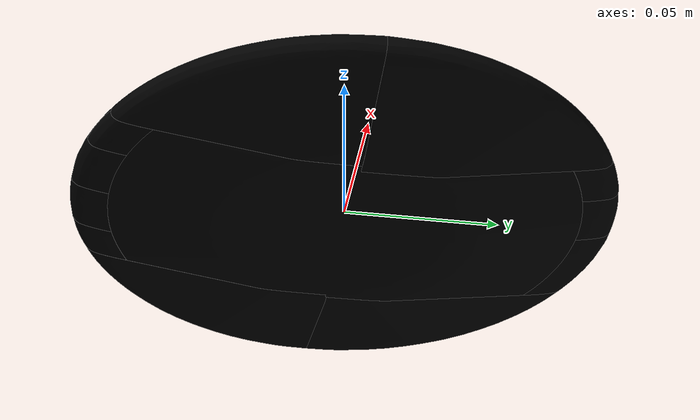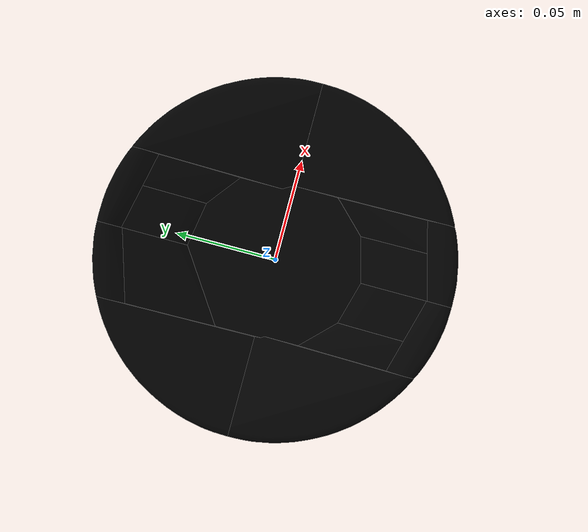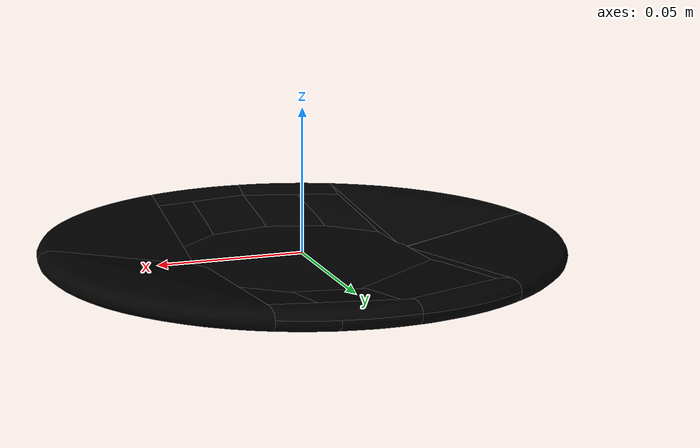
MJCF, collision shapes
<mujoco model="plate_31">
  <asset>
    <mesh file="visual/model_normalized_0.obj" name="model_normalized_0_vis" scale="0.175 0.175 0.175" refquat="1.0 0.0 0.0 0.0" />
    <texture type="2d" name="image0" file="visual/image0.png" />
    <material name="phong2.002" texture="image0" specular="0.5" shininess="1.0" />
    <mesh file="collision/model_collision_0.obj" name="model_collision_0" scale="0.175 0.175 0.175" refquat="1.0 0.0 0.0 0.0" />
    <mesh file="collision/model_collision_1.obj" name="model_collision_1" scale="0.175 0.175 0.175" refquat="1.0 0.0 0.0 0.0" />
    <mesh file="collision/model_collision_2.obj" name="model_collision_2" scale="0.175 0.175 0.175" refquat="1.0 0.0 0.0 0.0" />
    <mesh file="collision/model_collision_3.obj" name="model_collision_3" scale="0.175 0.175 0.175" refquat="1.0 0.0 0.0 0.0" />
    <mesh file="collision/model_collision_4.obj" name="model_collision_4" scale="0.175 0.175 0.175" refquat="1.0 0.0 0.0 0.0" />
    <mesh file="collision/model_collision_5.obj" name="model_collision_5" scale="0.175 0.175 0.175" refquat="1.0 0.0 0.0 0.0" />
    <mesh file="collision/model_collision_6.obj" name="model_collision_6" scale="0.175 0.175 0.175" refquat="1.0 0.0 0.0 0.0" />
    <mesh file="collision/model_collision_7.obj" name="model_collision_7" scale="0.175 0.175 0.175" refquat="1.0 0.0 0.0 0.0" />
    <mesh file="collision/model_collision_8.obj" name="model_collision_8" scale="0.175 0.175 0.175" refquat="1.0 0.0 0.0 0.0" />
    <mesh file="collision/model_collision_9.obj" name="model_collision_9" scale="0.175 0.175 0.175" refquat="1.0 0.0 0.0 0.0" />
    <mesh file="collision/model_collision_10.obj" name="model_collision_10" scale="0.175 0.175 0.175" refquat="1.0 0.0 0.0 0.0" />
    <mesh file="collision/model_collision_11.obj" name="model_collision_11" scale="0.175 0.175 0.175" refquat="1.0 0.0 0.0 0.0" />
    <mesh file="collision/model_collision_12.obj" name="model_collision_12" scale="0.175 0.175 0.175" refquat="1.0 0.0 0.0 0.0" />
    <mesh file="collision/model_collision_13.obj" name="model_collision_13" scale="0.175 0.175 0.175" refquat="1.0 0.0 0.0 0.0" />
    <mesh file="collision/model_collision_14.obj" name="model_collision_14" scale="0.175 0.175 0.175" refquat="1.0 0.0 0.0 0.0" />
    <mesh file="collision/model_collision_15.obj" name="model_collision_15" scale="0.175 0.175 0.175" refquat="1.0 0.0 0.0 0.0" />
  </asset>
  <default>
    <default class="region">
      <geom group="1" conaffinity="0" contype="0" rgba="0 1 0 0" />
    </default>
  </default>
  <worldbody>
    <body>
      <body name="object">
        <geom density="0" type="mesh" mesh="model_normalized_0_vis" conaffinity="0" contype="0" group="2" material="phong2.002" mass="0.18" />
        <geom class="region" name="reg_bbox" type="box" pos="2.624999998618316e-09 -1.749999999078877e-09 -4.39949999999972e-06" size="0.08564819725 0.08564822525 0.00693133875" />
        <geom density="0" friction="1.2 0.1 0.001" type="mesh" group="3" rgba="0 0 0 0" mesh="model_collision_0"  condim="4"/>        <geom density="0" friction="1.2 0.1 0.001" type="mesh" group="3" rgba="0 0 0 0" mesh="model_collision_1"  condim="4"/>        <geom density="0" friction="1.2 0.1 0.001" type="mesh" group="3" rgba="0 0 0 0" mesh="model_collision_2"  condim="4"/>        <geom density="0" friction="1.2 0.1 0.001" type="mesh" group="3" rgba="0 0 0 0" mesh="model_collision_3"  condim="4"/>        <geom density="0" friction="1.2 0.1 0.001" type="mesh" group="3" rgba="0 0 0 0" mesh="model_collision_4"  condim="4"/>        <geom density="0" friction="1.2 0.1 0.001" type="mesh" group="3" rgba="0 0 0 0" mesh="model_collision_5"  condim="4"/>        <geom density="0" friction="1.2 0.1 0.001" type="mesh" group="3" rgba="0 0 0 0" mesh="model_collision_6"  condim="4"/>        <geom density="0" friction="1.2 0.1 0.001" type="mesh" group="3" rgba="0 0 0 0" mesh="model_collision_7"  condim="4"/>        <geom density="0" friction="1.2 0.1 0.001" type="mesh" group="3" rgba="0 0 0 0" mesh="model_collision_8"  condim="4"/>        <geom density="0" friction="1.2 0.1 0.001" type="mesh" group="3" rgba="0 0 0 0" mesh="model_collision_9"  condim="4"/>        <geom density="0" friction="1.2 0.1 0.001" type="mesh" group="3" rgba="0 0 0 0" mesh="model_collision_10"  condim="4"/>        <geom density="0" friction="1.2 0.1 0.001" type="mesh" group="3" rgba="0 0 0 0" mesh="model_collision_11"  condim="4"/>        <geom density="0" friction="1.2 0.1 0.001" type="mesh" group="3" rgba="0 0 0 0" mesh="model_collision_12"  condim="4"/>        <geom density="0" friction="1.2 0.1 0.001" type="mesh" group="3" rgba="0 0 0 0" mesh="model_collision_13"  condim="4"/>        <geom density="0" friction="1.2 0.1 0.001" type="mesh" group="3" rgba="0 0 0 0" mesh="model_collision_14"  condim="4"/>        <geom density="0" friction="1.2 0.1 0.001" type="mesh" group="3" rgba="0 0 0 0" mesh="model_collision_15"  condim="4"/>      </body>
    </body>
  </worldbody>
</mujoco>
